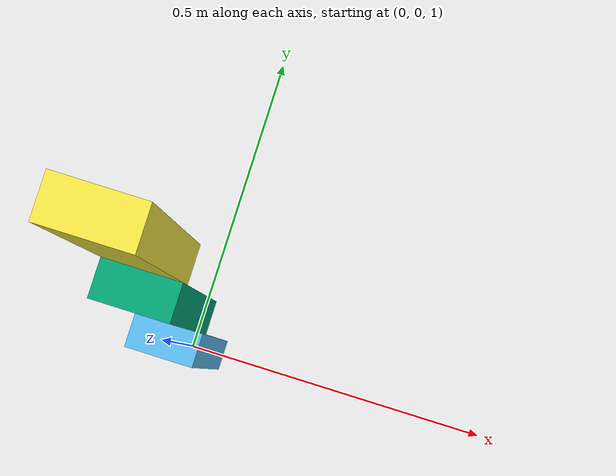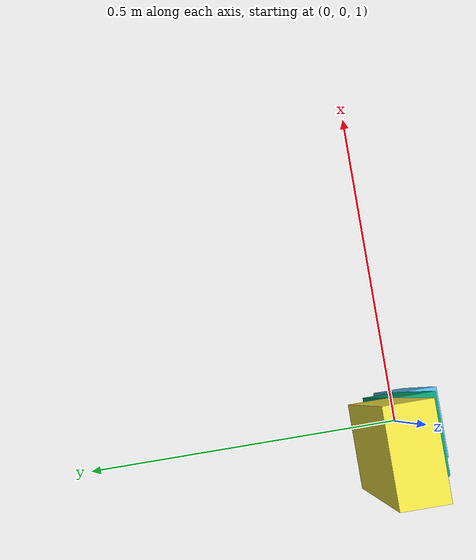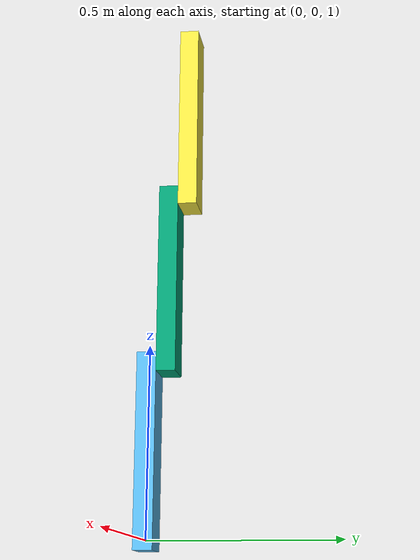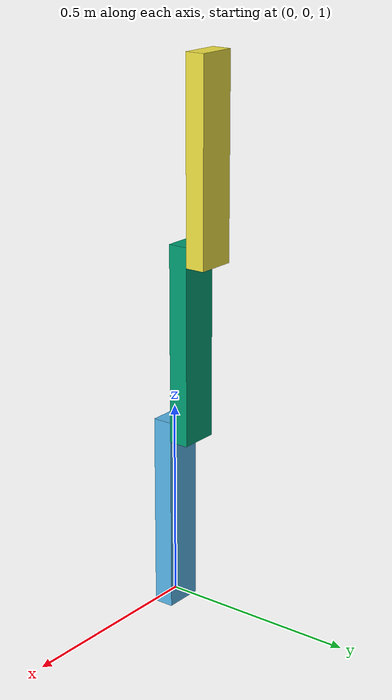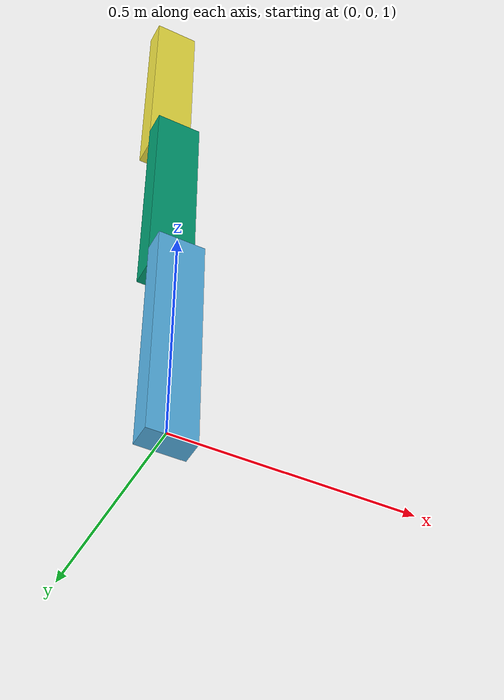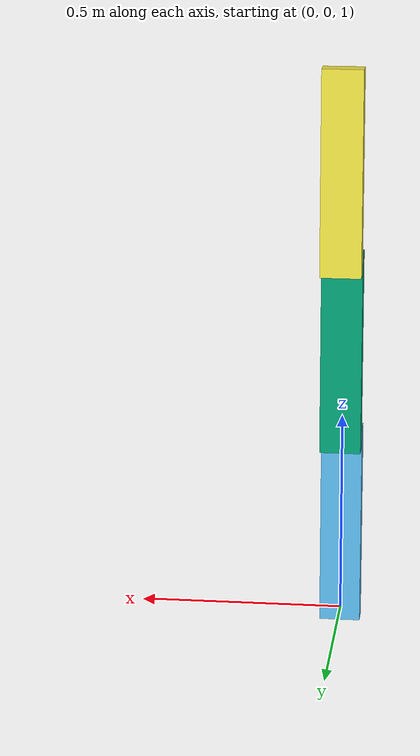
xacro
<?xml version="1.0"?>
<robot xmlns:xacro="http://www.ros.org/wiki/xacro" name="easybot">
    <xacro:arg name="initial_positions_file" default="initial_positions.yaml" />

    <!-- Import easybot urdf file -->
    <xacro:include filename="$(find easybot_description)/urdf/gzbot.urdf" />

    <!-- Import control_xacro -->
    <xacro:include filename="easybot.ros2_control.xacro" />

    <xacro:easybot_ros2_control name="FakeSystem" initial_positions_file="$(arg initial_positions_file)"/>

</robot>

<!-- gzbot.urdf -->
<robot name="easybot">

  <!-- Virtual Fixed Frame Link - must name world(!) for Gazebo to work -->
  <link name="world"/>

  <!-- Virtual Joint to fixate/move robot -->
  <joint name="fixedFrameToWorld" type="fixed">
    <parent link="world"/>
    <child link="base"/>
    <origin rpy="0.0 0.0 0.0" xyz="0.0 0.0 1.0"/>
  </joint>

  <!--From here the EasyBot is defined-->

  <link name="base">
    <visual>
      <geometry>
        <box size="0.5 0.05 0.1"/>
      </geometry>
      <origin rpy="0 1.57 0" xyz="0 0 0.225"/>
    </visual>
    <collision>
      <geometry>
        <box size="0.5 0.05 0.1"/>
      </geometry>
      <origin rpy="0 1.57 0" xyz="0 0 0.225"/>
    </collision>
    <inertial>
      <mass value="10.0"/>
       <origin xyz="0.0 0.025 0.225" rpy="0.0 0.0 0.0"/>
      <inertia ixx="1e-5" ixy="0.0" ixz="0.0" iyy="1e-5" iyz="0.0" izz="1e-5"/>
    </inertial>
  </link>

  <link name="link1">
    <visual>
      <geometry>
        <box size="0.5 0.05 0.1"/>
      </geometry>
      <origin rpy="0 1.57 0" xyz="0 0 0.225"/>
    </visual>
    <collision>
      <geometry>
        <box size="0.5 0.05 0.1"/>
      </geometry>
      <origin rpy="0 1.57 0" xyz="0 0 0.225"/>
    </collision>
    <inertial>
      <mass value="5.0"/>
      <origin xyz="0.0 0.025 0.225" rpy="0.0 0.0 0.0"/>
      <inertia ixx="4e-5" ixy="0" ixz="0" iyy="10e-5" iyz="0" izz="6e-5"/>
    </inertial>
  </link>

  <link name="link2">
    <visual>
      <geometry>
        <box size="0.5 0.05 0.1"/>
      </geometry>
      <origin rpy="0 1.57 0" xyz="0 0 0.225"/>
    </visual>
    <collision>
      <geometry>
        <box size="0.5 0.05 0.1"/>
      </geometry>
      <origin rpy="0 1.57 0" xyz="0 0 0.225"/>
    </collision>
    <inertial>
      <mass value="5.0"/>
      <origin xyz="0.0 0.025 0.225" rpy="0.0 0.0 0.0"/>
      <inertia ixx="2e-5" ixy="0" ixz="0" iyy="5e-5" iyz="0" izz="3e-5"/>
    </inertial>
  </link>

  <joint name="joint1" type="revolute">
    <parent link="base"/>
    <child link="link1"/>
    <origin
      xyz="0.0 0.05 0.45"
      rpy="0.0 0.0 0.0" />
    <axis
      xyz="0 1 0" />
    <limit
      lower="-6.2831"
      upper="6.2831"
      effort="200.0"
      velocity="10.0" />
    <dynamics damping="0.1" friction="0.25"/>
  </joint>

  <joint name="joint2" type="revolute">
    <parent link="link1"/>
    <child link="link2"/>
    <origin
      xyz="0.0 0.05 0.45"
      rpy="0.0 0.0 0.0" />
    <axis
      xyz="0 1 0" />
    <limit
      lower="-6.2831"
      upper="6.2831"
      effort="100.0"
      velocity="10.0" />
    <dynamics damping="0.1" friction="0.25"/>
  </joint>

  <!-- Virtual TCP Link and Joint to place it -->
  <link name="TCP"/>
  <joint name="link2ToTCP" type="fixed">
    <parent link="link2"/>
    <child link="TCP"/>
    <origin rpy="0.0 0.0 1.57" xyz="0.0 0.0 0.475"/>
  </joint>

  <!-- Joint State Publisher Gazebo -->
  <gazebo>
    <plugin filename = "gz-sim-joint-state-publisher-system" name = "gz::sim::systems::JointStatePublisher"/>
  </gazebo>

  <!-- ROS2 control plugin Gazebo -->
  <gazebo>
    <plugin filename="libgz_ros2_control-system.so" name="gz_ros2_control::GazeboSimROS2ControlPlugin">
      <parameters>$(find easybot_description)/config/easybot_controller_position.yaml</parameters>
    </plugin>
  </gazebo>

  <!-- Hardware Interfaces for ROS2 control in Gazebo -->
  <ros2_control name="GazeboSimSystem" type="system">
  <hardware>
    <plugin>gz_ros2_control/GazeboSimSystem</plugin>
  </hardware>
  <joint name="joint1">
    <command_interface name="position">
      <param name="min">-6.28</param>
      <param name="max">6.28</param>
    </command_interface>
    <state_interface name="position">
      <param name="initial_value">0.0</param>
    </state_interface>
    <state_interface name="velocity"/>
  </joint>
    <joint name="joint2">
    <command_interface name="position">
      <param name="min">-6.28</param>
      <param name="max">6.28</param>
    </command_interface>
    <state_interface name="position">
      <param name="initial_value">0.0</param>
    </state_interface>
    <state_interface name="velocity"/>
  </joint>
  </ros2_control>

</robot>
